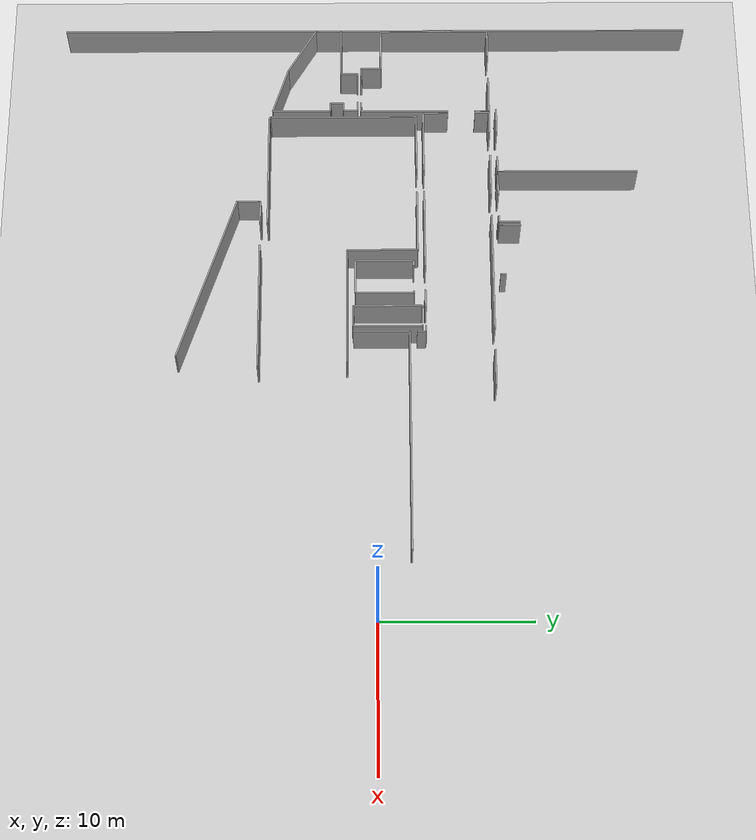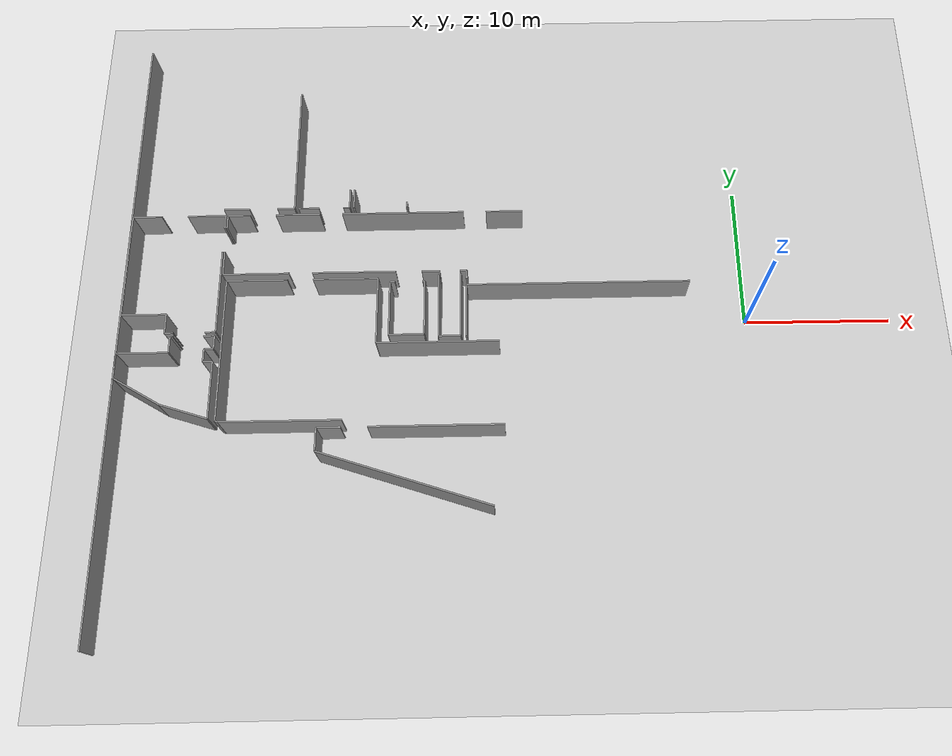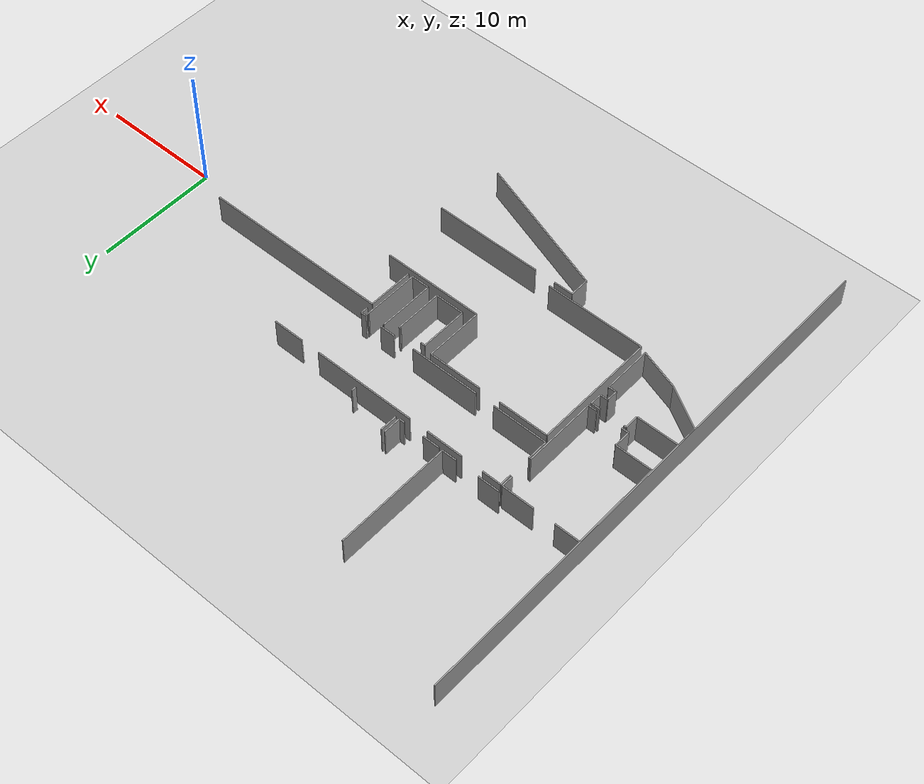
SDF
<sdf version="1.6">
 <world name="default">
  <model name="ground_plane">
   <static>1</static>
   <link name="link">
    <collision name="collision">
     <geometry><plane><normal>0 0 1</normal><size>100 100</size></plane></geometry>
     <surface><friction><ode><mu>100</mu><mu2>50</mu2></ode></friction></surface>
    </collision>
    <visual name="visual">
     <cast_shadows>0</cast_shadows>
     <geometry><plane><normal>0 0 1</normal><size>100 100</size></plane></geometry>
     <material>
      <script><uri>file://media/materials/scripts/gazebo.material</uri><name>Gazebo/Grey</name></script>
     </material>
    </visual>
   </link>
  </model>
  <model name="50052748">
   <static>1</static>
   <link name="Wall_0">
    <collision name="Wall_0_Collision">
     <geometry><box><size>0.575394132933 0.1 2.5</size></box></geometry>
     <pose>0.287697066466 0 1.25 0 0 0</pose>
    </collision>
    <visual name="Wall_0_Visual">
     <pose>0.287697066466 0 1.25 0 0 0</pose>
     <geometry><box><size>0.575394132933 0.1 2.5</size></box></geometry>
     <material>
      <script><uri>file://media/materials/scripts/gazebo.material</uri><name>Gazebo/Grey</name></script>
      <ambient>1 1 1 1</ambient>
     </material>
    </visual>
    <pose>3.08483290488 -22.4780374964 0 0 0 0.0</pose>
   </link>
   <link name="Wall_1">
    <collision name="Wall_1_Collision">
     <geometry><box><size>0.697524296039 0.1 2.5</size></box></geometry>
     <pose>0.34876214802 0 1.25 0 0 0</pose>
    </collision>
    <visual name="Wall_1_Visual">
     <pose>0.34876214802 0 1.25 0 0 0</pose>
     <geometry><box><size>0.697524296039 0.1 2.5</size></box></geometry>
     <material>
      <script><uri>file://media/materials/scripts/gazebo.material</uri><name>Gazebo/Grey</name></script>
      <ambient>1 1 1 1</ambient>
     </material>
    </visual>
    <pose>5.80872869222 -22.4780374964 0 0 0 0.0</pose>
   </link>
   <link name="Wall_2">
    <collision name="Wall_2_Collision">
     <geometry><box><size>5.95381374579 0.1 2.5</size></box></geometry>
     <pose>2.9769068729 0 1.25 0 0 0</pose>
    </collision>
    <visual name="Wall_2_Visual">
     <pose>2.9769068729 0 1.25 0 0 0</pose>
     <geometry><box><size>5.95381374579 0.1 2.5</size></box></geometry>
     <material>
      <script><uri>file://media/materials/scripts/gazebo.material</uri><name>Gazebo/Grey</name></script>
      <ambient>1 1 1 1</ambient>
     </material>
    </visual>
    <pose>6.50625298826 -22.4780374964 0 0 0 1.57079632679</pose>
   </link>
   <link name="Wall_3">
    <collision name="Wall_3_Collision">
     <geometry><box><size>0.959032495755 0.1 2.5</size></box></geometry>
     <pose>0.479516247877 0 1.25 0 0 0</pose>
    </collision>
    <visual name="Wall_3_Visual">
     <pose>0.479516247877 0 1.25 0 0 0</pose>
     <geometry><box><size>0.959032495755 0.1 2.5</size></box></geometry>
     <material>
      <script><uri>file://media/materials/scripts/gazebo.material</uri><name>Gazebo/Grey</name></script>
      <ambient>1 1 1 1</ambient>
     </material>
    </visual>
    <pose>6.50625298826 -14.6813645604 0 0 0 1.57079632679</pose>
   </link>
   <link name="Wall_4">
    <collision name="Wall_4_Collision">
     <geometry><box><size>2.63385174184 0.1 2.5</size></box></geometry>
     <pose>1.31692587092 0 1.25 0 0 0</pose>
    </collision>
    <visual name="Wall_4_Visual">
     <pose>1.31692587092 0 1.25 0 0 0</pose>
     <geometry><box><size>2.63385174184 0.1 2.5</size></box></geometry>
     <material>
      <script><uri>file://media/materials/scripts/gazebo.material</uri><name>Gazebo/Grey</name></script>
      <ambient>1 1 1 1</ambient>
     </material>
    </visual>
    <pose>6.50625298826 -13.7223320647 0 0 0 3.14159265359</pose>
   </link>
   <link name="Wall_5">
    <collision name="Wall_5_Collision">
     <geometry><box><size>2.01800119974 0.1 2.5</size></box></geometry>
     <pose>1.00900059987 0 1.25 0 0 0</pose>
    </collision>
    <visual name="Wall_5_Visual">
     <pose>1.00900059987 0 1.25 0 0 0</pose>
     <geometry><box><size>2.01800119974 0.1 2.5</size></box></geometry>
     <material>
      <script><uri>file://media/materials/scripts/gazebo.material</uri><name>Gazebo/Grey</name></script>
      <ambient>1 1 1 1</ambient>
     </material>
    </visual>
    <pose>2.07418361122 -13.7223320647 0 0 0 3.14159265359</pose>
   </link>
   <link name="Wall_6">
    <collision name="Wall_6_Collision">
     <geometry><box><size>7.40364970076 0.1 2.5</size></box></geometry>
     <pose>3.70182485038 0 1.25 0 0 0</pose>
    </collision>
    <visual name="Wall_6_Visual">
     <pose>3.70182485038 0 1.25 0 0 0</pose>
     <geometry><box><size>7.40364970076 0.1 2.5</size></box></geometry>
     <material>
      <script><uri>file://media/materials/scripts/gazebo.material</uri><name>Gazebo/Grey</name></script>
      <ambient>1 1 1 1</ambient>
     </material>
    </visual>
    <pose>0.056182411481 -13.7223320647 0 0 0 -1.57079632679</pose>
   </link>
   <link name="Wall_7">
    <collision name="Wall_7_Collision">
     <geometry><box><size>3.0286504934 0.1 2.5</size></box></geometry>
     <pose>1.5143252467 0 1.25 0 0 0</pose>
    </collision>
    <visual name="Wall_7_Visual">
     <pose>1.5143252467 0 1.25 0 0 0</pose>
     <geometry><box><size>3.0286504934 0.1 2.5</size></box></geometry>
     <material>
      <script><uri>file://media/materials/scripts/gazebo.material</uri><name>Gazebo/Grey</name></script>
      <ambient>1 1 1 1</ambient>
     </material>
    </visual>
    <pose>0.056182411481 -21.1259817654 0 0 0 0.0</pose>
   </link>
   <link name="Wall_8">
    <collision name="Wall_8_Collision">
     <geometry><box><size>1.35205573092 0.1 2.5</size></box></geometry>
     <pose>0.676027865462 0 1.25 0 0 0</pose>
    </collision>
    <visual name="Wall_8_Visual">
     <pose>0.676027865462 0 1.25 0 0 0</pose>
     <geometry><box><size>1.35205573092 0.1 2.5</size></box></geometry>
     <material>
      <script><uri>file://media/materials/scripts/gazebo.material</uri><name>Gazebo/Grey</name></script>
      <ambient>1 1 1 1</ambient>
     </material>
    </visual>
    <pose>3.08483290488 -21.1259817654 0 0 0 -1.57079632679</pose>
   </link>
   <link name="Wall_9">
    <collision name="Wall_9_Collision">
     <geometry><box><size>1.70221292753 0.1 2.5</size></box></geometry>
     <pose>0.851106463767 0 1.25 0 0 0</pose>
    </collision>
    <visual name="Wall_9_Visual">
     <pose>0.851106463767 0 1.25 0 0 0</pose>
     <geometry><box><size>1.70221292753 0.1 2.5</size></box></geometry>
     <material>
      <script><uri>file://media/materials/scripts/gazebo.material</uri><name>Gazebo/Grey</name></script>
      <ambient>1 1 1 1</ambient>
     </material>
    </visual>
    <pose>6.65463542941 -18.2443186646 0 0 0 1.57079632679</pose>
   </link>
   <link name="Wall_10">
    <collision name="Wall_10_Collision">
     <geometry><box><size>0.964359044924 0.1 2.5</size></box></geometry>
     <pose>0.482179522462 0 1.25 0 0 0</pose>
    </collision>
    <visual name="Wall_10_Visual">
     <pose>0.482179522462 0 1.25 0 0 0</pose>
     <geometry><box><size>0.964359044924 0.1 2.5</size></box></geometry>
     <material>
      <script><uri>file://media/materials/scripts/gazebo.material</uri><name>Gazebo/Grey</name></script>
      <ambient>1 1 1 1</ambient>
     </material>
    </visual>
    <pose>6.65463542941 -14.692905417 0 0 0 1.57079632679</pose>
   </link>
   <link name="Wall_11">
    <collision name="Wall_11_Collision">
     <geometry><box><size>1.5681614401 0.1 2.5</size></box></geometry>
     <pose>0.784080720048 0 1.25 0 0 0</pose>
    </collision>
    <visual name="Wall_11_Visual">
     <pose>0.784080720048 0 1.25 0 0 0</pose>
     <geometry><box><size>1.5681614401 0.1 2.5</size></box></geometry>
     <material>
      <script><uri>file://media/materials/scripts/gazebo.material</uri><name>Gazebo/Grey</name></script>
      <ambient>1 1 1 1</ambient>
     </material>
    </visual>
    <pose>6.65463542941 -13.728546372 0 0 0 0.0</pose>
   </link>
   <link name="Wall_12">
    <collision name="Wall_12_Collision">
     <geometry><box><size>3.06872643478 0.1 2.5</size></box></geometry>
     <pose>1.53436321739 0 1.25 0 0 0</pose>
    </collision>
    <visual name="Wall_12_Visual">
     <pose>1.53436321739 0 1.25 0 0 0</pose>
     <geometry><box><size>3.06872643478 0.1 2.5</size></box></geometry>
     <material>
      <script><uri>file://media/materials/scripts/gazebo.material</uri><name>Gazebo/Grey</name></script>
      <ambient>1 1 1 1</ambient>
     </material>
    </visual>
    <pose>9.99894737243 -13.728546372 0 0 0 0.0</pose>
   </link>
   <link name="Wall_13">
    <collision name="Wall_13_Collision">
     <geometry><box><size>8.453994468 0.1 2.5</size></box></geometry>
     <pose>4.226997234 0 1.25 0 0 0</pose>
    </collision>
    <visual name="Wall_13_Visual">
     <pose>4.226997234 0 1.25 0 0 0</pose>
     <geometry><box><size>8.453994468 0.1 2.5</size></box></geometry>
     <material>
      <script><uri>file://media/materials/scripts/gazebo.material</uri><name>Gazebo/Grey</name></script>
      <ambient>1 1 1 1</ambient>
     </material>
    </visual>
    <pose>14.6307623433 -13.728546372 0 0 0 0.0</pose>
   </link>
   <link name="Wall_14">
    <collision name="Wall_14_Collision">
     <geometry><box><size>2.53797385679 0.1 2.5</size></box></geometry>
     <pose>1.26898692839 0 1.25 0 0 0</pose>
    </collision>
    <visual name="Wall_14_Visual">
     <pose>1.26898692839 0 1.25 0 0 0</pose>
     <geometry><box><size>2.53797385679 0.1 2.5</size></box></geometry>
     <material>
      <script><uri>file://media/materials/scripts/gazebo.material</uri><name>Gazebo/Grey</name></script>
      <ambient>1 1 1 1</ambient>
     </material>
    </visual>
    <pose>24.6610348978 -13.728546372 0 0 0 0.0</pose>
   </link>
   <link name="Wall_30">
    <collision name="Wall_30_Collision">
     <geometry><box><size>0.586934989467 0.1 2.5</size></box></geometry>
     <pose>0.293467494734 0 1.25 0 0 0</pose>
    </collision>
    <visual name="Wall_30_Visual">
     <pose>0.293467494734 0 1.25 0 0 0</pose>
     <geometry><box><size>0.586934989467 0.1 2.5</size></box></geometry>
     <material>
      <script><uri>file://media/materials/scripts/gazebo.material</uri><name>Gazebo/Grey</name></script>
      <ambient>1 1 1 1</ambient>
     </material>
    </visual>
    <pose>23.3196322652 -18.8256734597 0 0 0 1.57079632679</pose>
   </link>
   <link name="Wall_31">
    <collision name="Wall_31_Collision">
     <geometry><box><size>0.456815002606 0.1 2.5</size></box></geometry>
     <pose>0.228407501303 0 1.25 0 0 0</pose>
    </collision>
    <visual name="Wall_31_Visual">
     <pose>0.228407501303 0 1.25 0 0 0</pose>
     <geometry><box><size>0.456815002606 0.1 2.5</size></box></geometry>
     <material>
      <script><uri>file://media/materials/scripts/gazebo.material</uri><name>Gazebo/Grey</name></script>
      <ambient>1 1 1 1</ambient>
     </material>
    </visual>
    <pose>23.3196322652 -18.2387384702 0 0 0 3.14159265359</pose>
   </link>
   <link name="Wall_32">
    <collision name="Wall_32_Collision">
     <geometry><box><size>1.24666615092 0.1 2.5</size></box></geometry>
     <pose>0.623333075461 0 1.25 0 0 0</pose>
    </collision>
    <visual name="Wall_32_Visual">
     <pose>0.623333075461 0 1.25 0 0 0</pose>
     <geometry><box><size>1.24666615092 0.1 2.5</size></box></geometry>
     <material>
      <script><uri>file://media/materials/scripts/gazebo.material</uri><name>Gazebo/Grey</name></script>
      <ambient>1 1 1 1</ambient>
     </material>
    </visual>
    <pose>21.4969378683 -18.2387384702 0 0 0 3.14159265359</pose>
   </link>
   <link name="Wall_33">
    <collision name="Wall_33_Collision">
     <geometry><box><size>5.7065096772 0.1 2.5</size></box></geometry>
     <pose>2.8532548386 0 1.25 0 0 0</pose>
    </collision>
    <visual name="Wall_33_Visual">
     <pose>2.8532548386 0 1.25 0 0 0</pose>
     <geometry><box><size>5.7065096772 0.1 2.5</size></box></geometry>
     <material>
      <script><uri>file://media/materials/scripts/gazebo.material</uri><name>Gazebo/Grey</name></script>
      <ambient>1 1 1 1</ambient>
     </material>
    </visual>
    <pose>18.4755162631 -18.2387384702 0 0 0 3.14159265359</pose>
   </link>
   <link name="Wall_34">
    <collision name="Wall_34_Collision">
     <geometry><box><size>4.52972621562 0.1 2.5</size></box></geometry>
     <pose>2.26486310781 0 1.25 0 0 0</pose>
    </collision>
    <visual name="Wall_34_Visual">
     <pose>2.26486310781 0 1.25 0 0 0</pose>
     <geometry><box><size>4.52972621562 0.1 2.5</size></box></geometry>
     <material>
      <script><uri>file://media/materials/scripts/gazebo.material</uri><name>Gazebo/Grey</name></script>
      <ambient>1 1 1 1</ambient>
     </material>
    </visual>
    <pose>11.1843582079 -18.2387384702 0 0 0 -3.14036074784</pose>
   </link>
   <link name="Wall_40">
    <collision name="Wall_40_Collision">
     <geometry><box><size>1.74254251411 0.1 2.5</size></box></geometry>
     <pose>0.871271257053 0 1.25 0 0 0</pose>
    </collision>
    <visual name="Wall_40_Visual">
     <pose>0.871271257053 0 1.25 0 0 0</pose>
     <geometry><box><size>1.74254251411 0.1 2.5</size></box></geometry>
     <material>
      <script><uri>file://media/materials/scripts/gazebo.material</uri><name>Gazebo/Grey</name></script>
      <ambient>1 1 1 1</ambient>
     </material>
    </visual>
    <pose>0.0157260023107 -25.6220965551 0 0 0 1.57079632679</pose>
   </link>
   <link name="Wall_41">
    <collision name="Wall_41_Collision">
     <geometry><box><size>3.47379781688 0.1 2.5</size></box></geometry>
     <pose>1.73689890844 0 1.25 0 0 0</pose>
    </collision>
    <visual name="Wall_41_Visual">
     <pose>1.73689890844 0 1.25 0 0 0</pose>
     <geometry><box><size>3.47379781688 0.1 2.5</size></box></geometry>
     <material>
      <script><uri>file://media/materials/scripts/gazebo.material</uri><name>Gazebo/Grey</name></script>
      <ambient>1 1 1 1</ambient>
     </material>
    </visual>
    <pose>0.0157260023107 -23.879554041 0 0 0 0.0</pose>
   </link>
   <link name="Wall_42">
    <collision name="Wall_42_Collision">
     <geometry><box><size>1.1452080715 0.1 2.5</size></box></geometry>
     <pose>0.572604035749 0 1.25 0 0 0</pose>
    </collision>
    <visual name="Wall_42_Visual">
     <pose>0.572604035749 0 1.25 0 0 0</pose>
     <geometry><box><size>1.1452080715 0.1 2.5</size></box></geometry>
     <material>
      <script><uri>file://media/materials/scripts/gazebo.material</uri><name>Gazebo/Grey</name></script>
      <ambient>1 1 1 1</ambient>
     </material>
    </visual>
    <pose>3.48952381919 -23.879554041 0 0 0 1.57079632679</pose>
   </link>
   <link name="Wall_43">
    <collision name="Wall_43_Collision">
     <geometry><box><size>0.17958080058 0.1 2.5</size></box></geometry>
     <pose>0.0897904002902 0 1.25 0 0 0</pose>
    </collision>
    <visual name="Wall_43_Visual">
     <pose>0.0897904002902 0 1.25 0 0 0</pose>
     <geometry><box><size>0.17958080058 0.1 2.5</size></box></geometry>
     <material>
      <script><uri>file://media/materials/scripts/gazebo.material</uri><name>Gazebo/Grey</name></script>
      <ambient>1 1 1 1</ambient>
     </material>
    </visual>
    <pose>3.48952381919 -22.7343459695 0 0 0 0.0</pose>
   </link>
   <link name="Wall_44">
    <collision name="Wall_44_Collision">
     <geometry><box><size>0.732273688242 0.1 2.5</size></box></geometry>
     <pose>0.366136844121 0 1.25 0 0 0</pose>
    </collision>
    <visual name="Wall_44_Visual">
     <pose>0.366136844121 0 1.25 0 0 0</pose>
     <geometry><box><size>0.732273688242 0.1 2.5</size></box></geometry>
     <material>
      <script><uri>file://media/materials/scripts/gazebo.material</uri><name>Gazebo/Grey</name></script>
      <ambient>1 1 1 1</ambient>
     </material>
    </visual>
    <pose>5.72844998687 -22.7343459695 0 0 0 0.0</pose>
   </link>
   <link name="Wall_45">
    <collision name="Wall_45_Collision">
     <geometry><box><size>0.951676784996 0.1 2.5</size></box></geometry>
     <pose>0.475838392498 0 1.25 0 0 0</pose>
    </collision>
    <visual name="Wall_45_Visual">
     <pose>0.475838392498 0 1.25 0 0 0</pose>
     <geometry><box><size>0.951676784996 0.1 2.5</size></box></geometry>
     <material>
      <script><uri>file://media/materials/scripts/gazebo.material</uri><name>Gazebo/Grey</name></script>
      <ambient>1 1 1 1</ambient>
     </material>
    </visual>
    <pose>6.46072367512 -22.7343459695 0 0 0 -1.57079632679</pose>
   </link>
   <link name="Wall_46">
    <collision name="Wall_46_Collision">
     <geometry><box><size>0.627645043836 0.1 2.5</size></box></geometry>
     <pose>0.313822521918 0 1.25 0 0 0</pose>
    </collision>
    <visual name="Wall_46_Visual">
     <pose>0.313822521918 0 1.25 0 0 0</pose>
     <geometry><box><size>0.627645043836 0.1 2.5</size></box></geometry>
     <material>
      <script><uri>file://media/materials/scripts/gazebo.material</uri><name>Gazebo/Grey</name></script>
      <ambient>1 1 1 1</ambient>
     </material>
    </visual>
    <pose>6.46072367512 -23.6860227545 0 0 0 3.14159265359</pose>
   </link>
   <link name="Wall_47">
    <collision name="Wall_47_Collision">
     <geometry><box><size>0.899172228894 0.1 2.5</size></box></geometry>
     <pose>0.449586114447 0 1.25 0 0 0</pose>
    </collision>
    <visual name="Wall_47_Visual">
     <pose>0.449586114447 0 1.25 0 0 0</pose>
     <geometry><box><size>0.899172228894 0.1 2.5</size></box></geometry>
     <material>
      <script><uri>file://media/materials/scripts/gazebo.material</uri><name>Gazebo/Grey</name></script>
      <ambient>1 1 1 1</ambient>
     </material>
    </visual>
    <pose>5.83307863128 -23.6860227545 0 0 0 -1.57079632679</pose>
   </link>
   <link name="Wall_48">
    <collision name="Wall_48_Collision">
     <geometry><box><size>0.636015335389 0.1 2.5</size></box></geometry>
     <pose>0.318007667694 0 1.25 0 0 0</pose>
    </collision>
    <visual name="Wall_48_Visual">
     <pose>0.318007667694 0 1.25 0 0 0</pose>
     <geometry><box><size>0.636015335389 0.1 2.5</size></box></geometry>
     <material>
      <script><uri>file://media/materials/scripts/gazebo.material</uri><name>Gazebo/Grey</name></script>
      <ambient>1 1 1 1</ambient>
     </material>
    </visual>
    <pose>5.83307863128 -24.5851949834 0 0 0 0.0</pose>
   </link>
   <link name="Wall_49">
    <collision name="Wall_49_Collision">
     <geometry><box><size>3.94228049862 0.1 2.5</size></box></geometry>
     <pose>1.97114024931 0 1.25 0 0 0</pose>
    </collision>
    <visual name="Wall_49_Visual">
     <pose>1.97114024931 0 1.25 0 0 0</pose>
     <geometry><box><size>3.94228049862 0.1 2.5</size></box></geometry>
     <material>
      <script><uri>file://media/materials/scripts/gazebo.material</uri><name>Gazebo/Grey</name></script>
      <ambient>1 1 1 1</ambient>
     </material>
    </visual>
    <pose>6.46909396667 -24.5851949834 0 0 0 -1.57079632679</pose>
   </link>
   <link name="Wall_50">
    <collision name="Wall_50_Collision">
     <geometry><box><size>3.38507747795 0.1 2.5</size></box></geometry>
     <pose>1.69253873898 0 1.25 0 0 0</pose>
    </collision>
    <visual name="Wall_50_Visual">
     <pose>1.69253873898 0 1.25 0 0 0</pose>
     <geometry><box><size>3.38507747795 0.1 2.5</size></box></geometry>
     <material>
      <script><uri>file://media/materials/scripts/gazebo.material</uri><name>Gazebo/Grey</name></script>
      <ambient>1 1 1 1</ambient>
     </material>
    </visual>
    <pose>6.46909396667 -28.527475482 0 0 0 2.83503122437</pose>
   </link>
   <link name="Wall_51">
    <collision name="Wall_51_Collision">
     <geometry><box><size>3.73585272438 0.1 2.5</size></box></geometry>
     <pose>1.86792636219 0 1.25 0 0 0</pose>
    </collision>
    <visual name="Wall_51_Visual">
     <pose>1.86792636219 0 1.25 0 0 0</pose>
     <geometry><box><size>3.73585272438 0.1 2.5</size></box></geometry>
     <material>
      <script><uri>file://media/materials/scripts/gazebo.material</uri><name>Gazebo/Grey</name></script>
      <ambient>1 1 1 1</ambient>
     </material>
    </visual>
    <pose>3.24183928279 -27.5059194448 0 0 0 2.61307347186</pose>
   </link>
   <link name="Wall_52">
    <collision name="Wall_52_Collision">
     <geometry><box><size>1.79530071541 0.1 2.5</size></box></geometry>
     <pose>0.897650357703 0 1.25 0 0 0</pose>
    </collision>
    <visual name="Wall_52_Visual">
     <pose>0.897650357703 0 1.25 0 0 0</pose>
     <geometry><box><size>1.79530071541 0.1 2.5</size></box></geometry>
     <material>
      <script><uri>file://media/materials/scripts/gazebo.material</uri><name>Gazebo/Grey</name></script>
      <ambient>1 1 1 1</ambient>
     </material>
    </visual>
    <pose>6.35495362732 -13.2433231072 0 0 0 0.0</pose>
   </link>
   <link name="Wall_53">
    <collision name="Wall_53_Collision">
     <geometry><box><size>1.19251290103 0.1 2.5</size></box></geometry>
     <pose>0.596256450514 0 1.25 0 0 0</pose>
    </collision>
    <visual name="Wall_53_Visual">
     <pose>0.596256450514 0 1.25 0 0 0</pose>
     <geometry><box><size>1.19251290103 0.1 2.5</size></box></geometry>
     <material>
      <script><uri>file://media/materials/scripts/gazebo.material</uri><name>Gazebo/Grey</name></script>
      <ambient>1 1 1 1</ambient>
     </material>
    </visual>
    <pose>10.0877231919 -13.2433231072 0 0 0 0.0</pose>
   </link>
   <link name="Wall_54">
    <collision name="Wall_54_Collision">
     <geometry><box><size>9.46083908368 0.1 2.5</size></box></geometry>
     <pose>4.73041954184 0 1.25 0 0 0</pose>
    </collision>
    <visual name="Wall_54_Visual">
     <pose>4.73041954184 0 1.25 0 0 0</pose>
     <geometry><box><size>9.46083908368 0.1 2.5</size></box></geometry>
     <material>
      <script><uri>file://media/materials/scripts/gazebo.material</uri><name>Gazebo/Grey</name></script>
      <ambient>1 1 1 1</ambient>
     </material>
    </visual>
    <pose>11.280236093 -13.2433231072 0 0 0 1.57079632679</pose>
   </link>
   <link name="Wall_57">
    <collision name="Wall_57_Collision">
     <geometry><box><size>9.97206098138 0.1 2.5</size></box></geometry>
     <pose>4.98603049069 0 1.25 0 0 0</pose>
    </collision>
    <visual name="Wall_57_Visual">
     <pose>4.98603049069 0 1.25 0 0 0</pose>
     <geometry><box><size>9.97206098138 0.1 2.5</size></box></geometry>
     <material>
      <script><uri>file://media/materials/scripts/gazebo.material</uri><name>Gazebo/Grey</name></script>
      <ambient>1 1 1 1</ambient>
     </material>
    </visual>
    <pose>6.96027789368 -28.6966568295 0 0 0 1.57079632679</pose>
   </link>
   <link name="Wall_58">
    <collision name="Wall_58_Collision">
     <geometry><box><size>4.1380945919 0.1 2.5</size></box></geometry>
     <pose>2.06904729595 0 1.25 0 0 0</pose>
    </collision>
    <visual name="Wall_58_Visual">
     <pose>2.06904729595 0 1.25 0 0 0</pose>
     <geometry><box><size>4.1380945919 0.1 2.5</size></box></geometry>
     <material>
      <script><uri>file://media/materials/scripts/gazebo.material</uri><name>Gazebo/Grey</name></script>
      <ambient>1 1 1 1</ambient>
     </material>
    </visual>
    <pose>6.96027789368 -18.7245958481 0 0 0 0.0</pose>
   </link>
   <link name="Wall_59">
    <collision name="Wall_59_Collision">
     <geometry><box><size>4.4200212301 0.1 2.5</size></box></geometry>
     <pose>2.21001061505 0 1.25 0 0 0</pose>
    </collision>
    <visual name="Wall_59_Visual">
     <pose>2.21001061505 0 1.25 0 0 0</pose>
     <geometry><box><size>4.4200212301 0.1 2.5</size></box></geometry>
     <material>
      <script><uri>file://media/materials/scripts/gazebo.material</uri><name>Gazebo/Grey</name></script>
      <ambient>1 1 1 1</ambient>
     </material>
    </visual>
    <pose>12.8448465003 -18.7245958481 0 0 0 0.0</pose>
   </link>
   <link name="Wall_60">
    <collision name="Wall_60_Collision">
     <geometry><box><size>4.70702077227 0.1 2.5</size></box></geometry>
     <pose>2.35351038614 0 1.25 0 0 0</pose>
    </collision>
    <visual name="Wall_60_Visual">
     <pose>2.35351038614 0 1.25 0 0 0</pose>
     <geometry><box><size>4.70702077227 0.1 2.5</size></box></geometry>
     <material>
      <script><uri>file://media/materials/scripts/gazebo.material</uri><name>Gazebo/Grey</name></script>
      <ambient>1 1 1 1</ambient>
     </material>
    </visual>
    <pose>17.2648677304 -18.7245958481 0 0 0 -1.57079632679</pose>
   </link>
   <link name="Wall_61">
    <collision name="Wall_61_Collision">
     <geometry><box><size>8.24055203341 0.1 2.5</size></box></geometry>
     <pose>4.12027601671 0 1.25 0 0 0</pose>
    </collision>
    <visual name="Wall_61_Visual">
     <pose>4.12027601671 0 1.25 0 0 0</pose>
     <geometry><box><size>8.24055203341 0.1 2.5</size></box></geometry>
     <material>
      <script><uri>file://media/materials/scripts/gazebo.material</uri><name>Gazebo/Grey</name></script>
      <ambient>1 1 1 1</ambient>
     </material>
    </visual>
    <pose>17.2648677304 -23.4316166204 0 0 0 0.0</pose>
   </link>
   <link name="Wall_64">
    <collision name="Wall_64_Collision">
     <geometry><box><size>8.03218250279 0.1 2.5</size></box></geometry>
     <pose>4.0160912514 0 1.25 0 0 0</pose>
    </collision>
    <visual name="Wall_64_Visual">
     <pose>4.0160912514 0 1.25 0 0 0</pose>
     <geometry><box><size>8.03218250279 0.1 2.5</size></box></geometry>
     <material>
      <script><uri>file://media/materials/scripts/gazebo.material</uri><name>Gazebo/Grey</name></script>
      <ambient>1 1 1 1</ambient>
     </material>
    </visual>
    <pose>15.1979130073 -28.7655215009 0 0 0 3.14159265359</pose>
   </link>
   <link name="Wall_65">
    <collision name="Wall_65_Collision">
     <geometry><box><size>0.216686682255 0.1 2.5</size></box></geometry>
     <pose>0.108343341127 0 1.25 0 0 0</pose>
    </collision>
    <visual name="Wall_65_Visual">
     <pose>0.108343341127 0 1.25 0 0 0</pose>
     <geometry><box><size>0.216686682255 0.1 2.5</size></box></geometry>
     <material>
      <script><uri>file://media/materials/scripts/gazebo.material</uri><name>Gazebo/Grey</name></script>
      <ambient>1 1 1 1</ambient>
     </material>
    </visual>
    <pose>7.16573050451 -28.7655215009 0 0 0 2.81817635948</pose>
   </link>
   <link name="Wall_66">
    <collision name="Wall_66_Collision">
     <geometry><box><size>1.42269591872 0.1 2.5</size></box></geometry>
     <pose>0.711347959361 0 1.25 0 0 0</pose>
    </collision>
    <visual name="Wall_66_Visual">
     <pose>0.711347959361 0 1.25 0 0 0</pose>
     <geometry><box><size>1.42269591872 0.1 2.5</size></box></geometry>
     <material>
      <script><uri>file://media/materials/scripts/gazebo.material</uri><name>Gazebo/Grey</name></script>
      <ambient>1 1 1 1</ambient>
     </material>
    </visual>
    <pose>11.5730694747 -13.2485228338 0 0 0 0.0</pose>
   </link>
   <link name="Wall_67">
    <collision name="Wall_67_Collision">
     <geometry><box><size>0.433606466938 0.1 2.5</size></box></geometry>
     <pose>0.216803233469 0 1.25 0 0 0</pose>
    </collision>
    <visual name="Wall_67_Visual">
     <pose>0.216803233469 0 1.25 0 0 0</pose>
     <geometry><box><size>0.433606466938 0.1 2.5</size></box></geometry>
     <material>
      <script><uri>file://media/materials/scripts/gazebo.material</uri><name>Gazebo/Grey</name></script>
      <ambient>1 1 1 1</ambient>
     </material>
    </visual>
    <pose>14.6991197243 -13.2485228338 0 0 0 0.0</pose>
   </link>
   <link name="Wall_68">
    <collision name="Wall_68_Collision">
     <geometry><box><size>1.444128938 0.1 2.5</size></box></geometry>
     <pose>0.722064469 0 1.25 0 0 0</pose>
    </collision>
    <visual name="Wall_68_Visual">
     <pose>0.722064469 0 1.25 0 0 0</pose>
     <geometry><box><size>1.444128938 0.1 2.5</size></box></geometry>
     <material>
      <script><uri>file://media/materials/scripts/gazebo.material</uri><name>Gazebo/Grey</name></script>
      <ambient>1 1 1 1</ambient>
     </material>
    </visual>
    <pose>15.1327261913 -13.2485228338 0 0 0 1.57079632679</pose>
   </link>
   <link name="Wall_82">
    <collision name="Wall_82_Collision">
     <geometry><box><size>2.37652868791 0.1 2.5</size></box></geometry>
     <pose>1.18826434395 0 1.25 0 0 0</pose>
    </collision>
    <visual name="Wall_82_Visual">
     <pose>1.18826434395 0 1.25 0 0 0</pose>
     <geometry><box><size>2.37652868791 0.1 2.5</size></box></geometry>
     <material>
      <script><uri>file://media/materials/scripts/gazebo.material</uri><name>Gazebo/Grey</name></script>
      <ambient>1 1 1 1</ambient>
     </material>
    </visual>
    <pose>18.0930193037 -22.8782896197 0 0 0 0.0</pose>
   </link>
   <link name="Wall_83">
    <collision name="Wall_83_Collision">
     <geometry><box><size>3.87722050519 0.1 2.5</size></box></geometry>
     <pose>1.93861025259 0 1.25 0 0 0</pose>
    </collision>
    <visual name="Wall_83_Visual">
     <pose>1.93861025259 0 1.25 0 0 0</pose>
     <geometry><box><size>3.87722050519 0.1 2.5</size></box></geometry>
     <material>
      <script><uri>file://media/materials/scripts/gazebo.material</uri><name>Gazebo/Grey</name></script>
      <ambient>1 1 1 1</ambient>
     </material>
    </visual>
    <pose>20.4695479916 -22.8782896197 0 0 0 1.57079632679</pose>
   </link>
   <link name="Wall_84">
    <collision name="Wall_84_Collision">
     <geometry><box><size>0.151553006139 0.1 2.5</size></box></geometry>
     <pose>0.0757765030697 0 1.25 0 0 0</pose>
    </collision>
    <visual name="Wall_84_Visual">
     <pose>0.0757765030697 0 1.25 0 0 0</pose>
     <geometry><box><size>0.151553006139 0.1 2.5</size></box></geometry>
     <material>
      <script><uri>file://media/materials/scripts/gazebo.material</uri><name>Gazebo/Grey</name></script>
      <ambient>1 1 1 1</ambient>
     </material>
    </visual>
    <pose>20.4695479916 -19.0010691145 0 0 0 3.14159265359</pose>
   </link>
   <link name="Wall_85">
    <collision name="Wall_85_Collision">
     <geometry><box><size>0.350284019211 0.1 2.5</size></box></geometry>
     <pose>0.175142009606 0 1.25 0 0 0</pose>
    </collision>
    <visual name="Wall_85_Visual">
     <pose>0.175142009606 0 1.25 0 0 0</pose>
     <geometry><box><size>0.350284019211 0.1 2.5</size></box></geometry>
     <material>
      <script><uri>file://media/materials/scripts/gazebo.material</uri><name>Gazebo/Grey</name></script>
      <ambient>1 1 1 1</ambient>
     </material>
    </visual>
    <pose>18.4349330313 -19.0010691145 0 0 0 3.14159265359</pose>
   </link>
   <link name="Wall_86">
    <collision name="Wall_86_Collision">
     <geometry><box><size>3.87722954023 0.1 2.5</size></box></geometry>
     <pose>1.93861477011 0 1.25 0 0 0</pose>
    </collision>
    <visual name="Wall_86_Visual">
     <pose>1.93861477011 0 1.25 0 0 0</pose>
     <geometry><box><size>3.87722954023 0.1 2.5</size></box></geometry>
     <material>
      <script><uri>file://media/materials/scripts/gazebo.material</uri><name>Gazebo/Grey</name></script>
      <ambient>1 1 1 1</ambient>
     </material>
    </visual>
    <pose>18.0846490121 -19.0010691145 0 0 0 -1.568637492</pose>
   </link>
   <link name="Wall_87">
    <collision name="Wall_87_Collision">
     <geometry><box><size>4.56726226787 0.1 2.5</size></box></geometry>
     <pose>2.28363113393 0 1.25 0 0 0</pose>
    </collision>
    <visual name="Wall_87_Visual">
     <pose>2.28363113393 0 1.25 0 0 0</pose>
     <geometry><box><size>4.56726226787 0.1 2.5</size></box></geometry>
     <material>
      <script><uri>file://media/materials/scripts/gazebo.material</uri><name>Gazebo/Grey</name></script>
      <ambient>1 1 1 1</ambient>
     </material>
    </visual>
    <pose>21.4318778749 -23.0335204812 0 0 0 1.57079632679</pose>
   </link>
   <link name="Wall_88">
    <collision name="Wall_88_Collision">
     <geometry><box><size>0.0603675572572 0.1 2.5</size></box></geometry>
     <pose>0.0301837786286 0 1.25 0 0 0</pose>
    </collision>
    <visual name="Wall_88_Visual">
     <pose>0.0301837786286 0 1.25 0 0 0</pose>
     <geometry><box><size>0.0603675572572 0.1 2.5</size></box></geometry>
     <material>
      <script><uri>file://media/materials/scripts/gazebo.material</uri><name>Gazebo/Grey</name></script>
      <ambient>1 1 1 1</ambient>
     </material>
    </visual>
    <pose>21.4318778749 -18.4662582133 0 0 0 0.0</pose>
   </link>
   <link name="Wall_89">
    <collision name="Wall_89_Collision">
     <geometry><box><size>0.0715279459939 0.1 2.5</size></box></geometry>
     <pose>0.0357639729969 0 1.25 0 0 0</pose>
    </collision>
    <visual name="Wall_89_Visual">
     <pose>0.0357639729969 0 1.25 0 0 0</pose>
     <geometry><box><size>0.0715279459939 0.1 2.5</size></box></geometry>
     <material>
      <script><uri>file://media/materials/scripts/gazebo.material</uri><name>Gazebo/Grey</name></script>
      <ambient>1 1 1 1</ambient>
     </material>
    </visual>
    <pose>22.8448084535 -18.4662582133 0 0 0 0.0</pose>
   </link>
   <link name="Wall_90">
    <collision name="Wall_90_Collision">
     <geometry><box><size>4.55876515372 0.1 2.5</size></box></geometry>
     <pose>2.27938257686 0 1.25 0 0 0</pose>
    </collision>
    <visual name="Wall_90_Visual">
     <pose>2.27938257686 0 1.25 0 0 0</pose>
     <geometry><box><size>4.55876515372 0.1 2.5</size></box></geometry>
     <material>
      <script><uri>file://media/materials/scripts/gazebo.material</uri><name>Gazebo/Grey</name></script>
      <ambient>1 1 1 1</ambient>
     </material>
    </visual>
    <pose>22.9163363995 -18.4662582133 0 0 0 -1.57079632679</pose>
   </link>
   <link name="Wall_91">
    <collision name="Wall_91_Collision">
     <geometry><box><size>1.48448284332 0.1 2.5</size></box></geometry>
     <pose>0.742241421662 0 1.25 0 0 0</pose>
    </collision>
    <visual name="Wall_91_Visual">
     <pose>0.742241421662 0 1.25 0 0 0</pose>
     <geometry><box><size>1.48448284332 0.1 2.5</size></box></geometry>
     <material>
      <script><uri>file://media/materials/scripts/gazebo.material</uri><name>Gazebo/Grey</name></script>
      <ambient>1 1 1 1</ambient>
     </material>
    </visual>
    <pose>22.9163363995 -23.0250233671 0 0 0 -3.13586866655</pose>
   </link>
   <link name="Wall_97">
    <collision name="Wall_97_Collision">
     <geometry><box><size>3.72642843464 0.1 2.5</size></box></geometry>
     <pose>1.86321421732 0 1.25 0 0 0</pose>
    </collision>
    <visual name="Wall_97_Visual">
     <pose>1.86321421732 0 1.25 0 0 0</pose>
     <geometry><box><size>3.72642843464 0.1 2.5</size></box></geometry>
     <material>
      <script><uri>file://media/materials/scripts/gazebo.material</uri><name>Gazebo/Grey</name></script>
      <ambient>1 1 1 1</ambient>
     </material>
    </visual>
    <pose>23.2990870041 -23.0292085128 0 0 0 1.57079632679</pose>
   </link>
   <link name="Wall_98">
    <collision name="Wall_98_Collision">
     <geometry><box><size>15.2572659838 0.1 2.5</size></box></geometry>
     <pose>7.62863299188 0 1.25 0 0 0</pose>
    </collision>
    <visual name="Wall_98_Visual">
     <pose>7.62863299188 0 1.25 0 0 0</pose>
     <geometry><box><size>15.2572659838 0.1 2.5</size></box></geometry>
     <material>
      <script><uri>file://media/materials/scripts/gazebo.material</uri><name>Gazebo/Grey</name></script>
      <ambient>1 1 1 1</ambient>
     </material>
    </visual>
    <pose>23.2990870041 -19.3027800782 0 0 0 0.0</pose>
   </link>
   <link name="Wall_159">
    <collision name="Wall_159_Collision">
     <geometry><box><size>1.57260023107 0.1 2.5</size></box></geometry>
     <pose>0.786300115535 0 1.25 0 0 0</pose>
    </collision>
    <visual name="Wall_159_Visual">
     <pose>0.786300115535 0 1.25 0 0 0</pose>
     <geometry><box><size>1.57260023107 0.1 2.5</size></box></geometry>
     <material>
      <script><uri>file://media/materials/scripts/gazebo.material</uri><name>Gazebo/Grey</name></script>
      <ambient>1 1 1 1</ambient>
     </material>
    </visual>
    <pose>13.5375515375 -30.8305738849 0 0 0 1.57079632679</pose>
   </link>
   <link name="Wall_160">
    <collision name="Wall_160_Collision">
     <geometry><box><size>1.58680436219 0.1 2.5</size></box></geometry>
     <pose>0.793402181095 0 1.25 0 0 0</pose>
    </collision>
    <visual name="Wall_160_Visual">
     <pose>0.793402181095 0 1.25 0 0 0</pose>
     <geometry><box><size>1.58680436219 0.1 2.5</size></box></geometry>
     <material>
      <script><uri>file://media/materials/scripts/gazebo.material</uri><name>Gazebo/Grey</name></script>
      <ambient>1 1 1 1</ambient>
     </material>
    </visual>
    <pose>13.5375515375 -29.2579736539 0 0 0 0.0</pose>
   </link>
   <link name="Wall_161">
    <collision name="Wall_161_Collision">
     <geometry><box><size>8.9288182797 0.1 2.5</size></box></geometry>
     <pose>4.46440913985 0 1.25 0 0 0</pose>
    </collision>
    <visual name="Wall_161_Visual">
     <pose>4.46440913985 0 1.25 0 0 0</pose>
     <geometry><box><size>8.9288182797 0.1 2.5</size></box></geometry>
     <material>
      <script><uri>file://media/materials/scripts/gazebo.material</uri><name>Gazebo/Grey</name></script>
      <ambient>1 1 1 1</ambient>
     </material>
    </visual>
    <pose>16.8775515122 -29.2579736539 0 0 0 0.0</pose>
   </link>
   <link name="Wall_165">
    <collision name="Wall_165_Collision">
     <geometry><box><size>12.1177873858 0.1 2.5</size></box></geometry>
     <pose>6.05889369291 0 1.25 0 0 0</pose>
    </collision>
    <visual name="Wall_165_Visual">
     <pose>6.05889369291 0 1.25 0 0 0</pose>
     <geometry><box><size>12.1177873858 0.1 2.5</size></box></geometry>
     <material>
      <script><uri>file://media/materials/scripts/gazebo.material</uri><name>Gazebo/Grey</name></script>
      <ambient>1 1 1 1</ambient>
     </material>
    </visual>
    <pose>25.0526630844 -34.6045607943 0 0 0 2.82488261596</pose>
   </link>
   <link name="Wall_214">
    <collision name="Wall_214_Collision">
     <geometry><box><size>1.43131985547 0.1 2.5</size></box></geometry>
     <pose>0.715659927736 0 1.25 0 0 0</pose>
    </collision>
    <visual name="Wall_214_Visual">
     <pose>0.715659927736 0 1.25 0 0 0</pose>
     <geometry><box><size>1.43131985547 0.1 2.5</size></box></geometry>
     <material>
      <script><uri>file://media/materials/scripts/gazebo.material</uri><name>Gazebo/Grey</name></script>
      <ambient>1 1 1 1</ambient>
     </material>
    </visual>
    <pose>15.4301251866 -13.2369819772 0 0 0 1.57079632679</pose>
   </link>
   <link name="Wall_237">
    <collision name="Wall_237_Collision">
     <geometry><box><size>0.391501363977 0.1 2.5</size></box></geometry>
     <pose>0.195750681989 0 1.25 0 0 0</pose>
    </collision>
    <visual name="Wall_237_Visual">
     <pose>0.195750681989 0 1.25 0 0 0</pose>
     <geometry><box><size>0.391501363977 0.1 2.5</size></box></geometry>
     <material>
      <script><uri>file://media/materials/scripts/gazebo.material</uri><name>Gazebo/Grey</name></script>
      <ambient>1 1 1 1</ambient>
     </material>
    </visual>
    <pose>19.121170116 -13.2426889942 0 0 0 1.57079632679</pose>
   </link>
   <link name="Wall_252">
    <collision name="Wall_252_Collision">
     <geometry><box><size>43.0022460282 0.1 2.5</size></box></geometry>
     <pose>21.5011230141 0 1.25 0 0 0</pose>
    </collision>
    <visual name="Wall_252_Visual">
     <pose>21.5011230141 0 1.25 0 0 0</pose>
     <geometry><box><size>43.0022460282 0.1 2.5</size></box></geometry>
     <material>
      <script><uri>file://media/materials/scripts/gazebo.material</uri><name>Gazebo/Grey</name></script>
      <ambient>1 1 1 1</ambient>
     </material>
    </visual>
    <pose>0.0 -43.0022460282 0 0 0 1.57079632679</pose>
   </link>
   <pose>-42.55 21.5022460282 0 0 0 0</pose>
  </model>
 </world>
</sdf>
